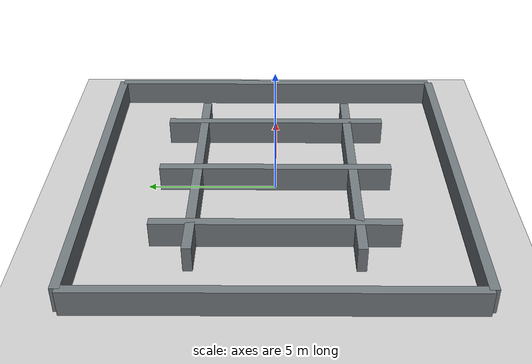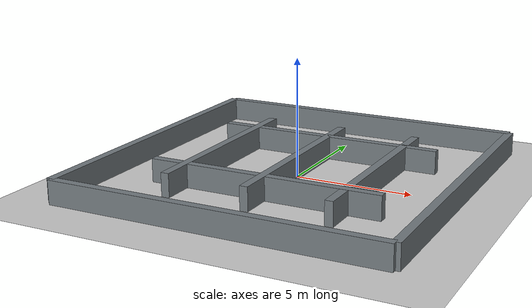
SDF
<?xml version="1.0" ?>
<sdf version="1.10">
  <world name="narrow_corridors">
    <physics name="1ms" type="ignored">
      <max_step_size>0.001</max_step_size>
      <real_time_factor>1.0</real_time_factor>
    </physics>
    <plugin filename="gz-sim-physics-system" name="gz::sim::systems::Physics"/>
    <plugin filename="gz-sim-user-commands-system" name="gz::sim::systems::UserCommands"/>
    <plugin filename="gz-sim-scene-broadcaster-system" name="gz::sim::systems::SceneBroadcaster"/>
    <light name="sun" type="directional">
      <pose>0 0 10 0 0 0</pose>
      <diffuse>0.8 0.8 0.8 1</diffuse>
      <specular>0.2 0.2 0.2 1</specular>
      <direction>-0.5 0.1 -0.9</direction>
    </light>
    <model name="ground_plane">
      <static>true</static>
      <link name="link">
        <collision name="collision"><geometry><plane><normal>0 0 1</normal><size>30 30</size></plane></geometry></collision>
        <visual name="visual"><geometry><plane><normal>0 0 1</normal><size>30 30</size></plane></geometry></visual>
      </link>
    </model>

    <model name="wall_north">
      <static>true</static>
      <pose>0.000 7.000 0.500 0 0 0</pose>
      <link name="link">
        <collision name="collision">
          <geometry><box><size>14.000 0.350 1.000</size></box></geometry>
        </collision>
        <visual name="visual">
          <geometry><box><size>14.000 0.350 1.000</size></box></geometry>
          <material><ambient>0.45 0.48 0.50 1</ambient><diffuse>0.45 0.48 0.50 1</diffuse></material>
        </visual>
      </link>
    </model>
    <model name="wall_south">
      <static>true</static>
      <pose>0.000 -7.000 0.500 0 0 0</pose>
      <link name="link">
        <collision name="collision">
          <geometry><box><size>14.000 0.350 1.000</size></box></geometry>
        </collision>
        <visual name="visual">
          <geometry><box><size>14.000 0.350 1.000</size></box></geometry>
          <material><ambient>0.45 0.48 0.50 1</ambient><diffuse>0.45 0.48 0.50 1</diffuse></material>
        </visual>
      </link>
    </model>
    <model name="wall_west">
      <static>true</static>
      <pose>-7.000 0.000 0.500 0 0 0</pose>
      <link name="link">
        <collision name="collision">
          <geometry><box><size>0.350 14.000 1.000</size></box></geometry>
        </collision>
        <visual name="visual">
          <geometry><box><size>0.350 14.000 1.000</size></box></geometry>
          <material><ambient>0.45 0.48 0.50 1</ambient><diffuse>0.45 0.48 0.50 1</diffuse></material>
        </visual>
      </link>
    </model>
    <model name="wall_east">
      <static>true</static>
      <pose>7.000 0.000 0.500 0 0 0</pose>
      <link name="link">
        <collision name="collision">
          <geometry><box><size>0.350 14.000 1.000</size></box></geometry>
        </collision>
        <visual name="visual">
          <geometry><box><size>0.350 14.000 1.000</size></box></geometry>
          <material><ambient>0.45 0.48 0.50 1</ambient><diffuse>0.45 0.48 0.50 1</diffuse></material>
        </visual>
      </link>
    </model>
    <model name="vertical_partition_-3.5">
      <static>true</static>
      <pose>-3.500 0.000 0.500 0 0 0</pose>
      <link name="link">
        <collision name="collision">
          <geometry><box><size>0.350 9.000 1.000</size></box></geometry>
        </collision>
        <visual name="visual">
          <geometry><box><size>0.350 9.000 1.000</size></box></geometry>
          <material><ambient>0.45 0.48 0.50 1</ambient><diffuse>0.45 0.48 0.50 1</diffuse></material>
        </visual>
      </link>
    </model>
    <model name="vertical_partition_0">
      <static>true</static>
      <pose>0.000 0.000 0.500 0 0 0</pose>
      <link name="link">
        <collision name="collision">
          <geometry><box><size>0.350 9.000 1.000</size></box></geometry>
        </collision>
        <visual name="visual">
          <geometry><box><size>0.350 9.000 1.000</size></box></geometry>
          <material><ambient>0.45 0.48 0.50 1</ambient><diffuse>0.45 0.48 0.50 1</diffuse></material>
        </visual>
      </link>
    </model>
    <model name="vertical_partition_3.5">
      <static>true</static>
      <pose>3.500 0.000 0.500 0 0 0</pose>
      <link name="link">
        <collision name="collision">
          <geometry><box><size>0.350 9.000 1.000</size></box></geometry>
        </collision>
        <visual name="visual">
          <geometry><box><size>0.350 9.000 1.000</size></box></geometry>
          <material><ambient>0.45 0.48 0.50 1</ambient><diffuse>0.45 0.48 0.50 1</diffuse></material>
        </visual>
      </link>
    </model>
    <model name="horizontal_partition_-3.0">
      <static>true</static>
      <pose>0.000 -3.000 0.500 0 0 0</pose>
      <link name="link">
        <collision name="collision">
          <geometry><box><size>10.000 0.350 1.000</size></box></geometry>
        </collision>
        <visual name="visual">
          <geometry><box><size>10.000 0.350 1.000</size></box></geometry>
          <material><ambient>0.45 0.48 0.50 1</ambient><diffuse>0.45 0.48 0.50 1</diffuse></material>
        </visual>
      </link>
    </model>
    <model name="horizontal_partition_3.0">
      <static>true</static>
      <pose>0.000 3.000 0.500 0 0 0</pose>
      <link name="link">
        <collision name="collision">
          <geometry><box><size>10.000 0.350 1.000</size></box></geometry>
        </collision>
        <visual name="visual">
          <geometry><box><size>10.000 0.350 1.000</size></box></geometry>
          <material><ambient>0.45 0.48 0.50 1</ambient><diffuse>0.45 0.48 0.50 1</diffuse></material>
        </visual>
      </link>
    </model>
  </world>
</sdf>
